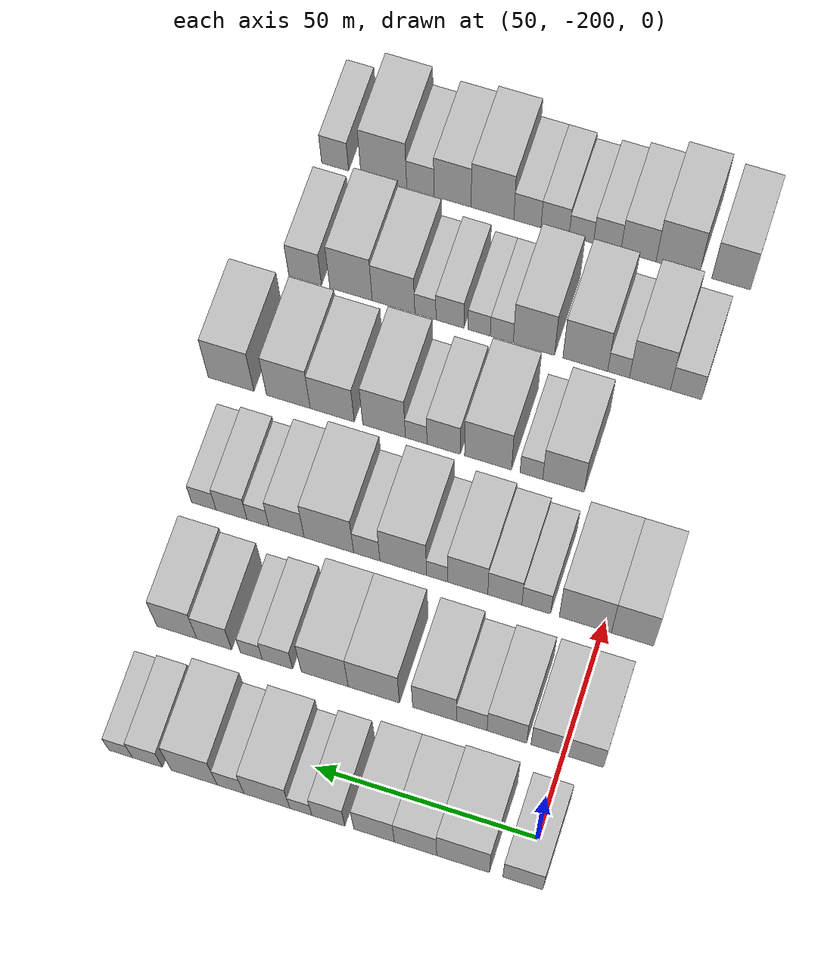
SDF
<sdf version="1.6">
 <world name="default">
  <model name="building_36">
   <static>1</static>
   <pose>50.0000 -199.7990 0 0.000000 0.000000 0.000000</pose>
   <link name="link">
    <pose>0 0 9.00 0 0 0</pose>
    <collision name="collision"><geometry><box><size>20.0000 8.8533 18.0000</size></box></geometry></collision>
    <visual name="visual">
     <cast_shadows>0</cast_shadows>
     <geometry><box><size>20.0000 8.8533 18.0000</size></box></geometry>
     <material>
      <script>
       <uri>model://HANNAS_wall/materials/scripts</uri>
       <uri>model://HANNAS_wall/materials/textures</uri>
       <name>vrc/HANNAS_wall</name>
      </script>
     </material>
    </visual>
   </link>
  </model>
  <model name="building_37">
   <static>1</static>
   <pose>50.0000 -186.5069 0 0.000000 0.000000 0.000000</pose>
   <link name="link">
    <pose>0 0 12.00 0 0 0</pose>
    <collision name="collision"><geometry><box><size>20.0000 11.7307 24.0000</size></box></geometry></collision>
    <visual name="visual">
     <cast_shadows>0</cast_shadows>
     <geometry><box><size>20.0000 11.7307 24.0000</size></box></geometry>
     <material>
      <script>
       <uri>model://HANNAS_wall/materials/scripts</uri>
       <uri>model://HANNAS_wall/materials/textures</uri>
       <name>vrc/HANNAS_wall</name>
      </script>
     </material>
    </visual>
   </link>
  </model>
  <model name="building_38">
   <static>1</static>
   <pose>50.0000 -175.9051 0 0.000000 0.000000 0.000000</pose>
   <link name="link">
    <pose>0 0 10.50 0 0 0</pose>
    <collision name="collision"><geometry><box><size>20.0000 9.4729 21.0000</size></box></geometry></collision>
    <visual name="visual">
     <cast_shadows>0</cast_shadows>
     <geometry><box><size>20.0000 9.4729 21.0000</size></box></geometry>
     <material>
      <script>
       <uri>model://HANNAS_wall/materials/scripts</uri>
       <uri>model://HANNAS_wall/materials/textures</uri>
       <name>vrc/HANNAS_wall</name>
      </script>
     </material>
    </visual>
   </link>
  </model>
  <model name="building_39">
   <static>1</static>
   <pose>50.0000 -166.6279 0 0.000000 0.000000 0.000000</pose>
   <link name="link">
    <pose>0 0 10.50 0 0 0</pose>
    <collision name="collision"><geometry><box><size>20.0000 9.0814 21.0000</size></box></geometry></collision>
    <visual name="visual">
     <cast_shadows>0</cast_shadows>
     <geometry><box><size>20.0000 9.0814 21.0000</size></box></geometry>
     <material>
      <script>
       <uri>model://HANNAS_wall/materials/scripts</uri>
       <uri>model://HANNAS_wall/materials/textures</uri>
       <name>vrc/HANNAS_wall</name>
      </script>
     </material>
    </visual>
   </link>
  </model>
  <model name="building_40">
   <static>1</static>
   <pose>50.0000 -156.3655 0 0.000000 0.000000 0.000000</pose>
   <link name="link">
    <pose>0 0 9.00 0 0 0</pose>
    <collision name="collision"><geometry><box><size>20.0000 7.4435 18.0000</size></box></geometry></collision>
    <visual name="visual">
     <cast_shadows>0</cast_shadows>
     <geometry><box><size>20.0000 7.4435 18.0000</size></box></geometry>
     <material>
      <script>
       <uri>model://HANNAS_wall/materials/scripts</uri>
       <uri>model://HANNAS_wall/materials/textures</uri>
       <name>vrc/HANNAS_wall</name>
      </script>
     </material>
    </visual>
   </link>
  </model>
  <model name="building_41">
   <static>1</static>
   <pose>50.0000 -150.1581 0 0.000000 0.000000 0.000000</pose>
   <link name="link">
    <pose>0 0 6.00 0 0 0</pose>
    <collision name="collision"><geometry><box><size>20.0000 4.9712 12.0000</size></box></geometry></collision>
    <visual name="visual">
     <cast_shadows>0</cast_shadows>
     <geometry><box><size>20.0000 4.9712 12.0000</size></box></geometry>
     <material>
      <script>
       <uri>model://HANNAS_wall/materials/scripts</uri>
       <uri>model://HANNAS_wall/materials/textures</uri>
       <name>vrc/HANNAS_wall</name>
      </script>
     </material>
    </visual>
   </link>
  </model>
  <model name="building_42">
   <static>1</static>
   <pose>50.0000 -142.4703 0 0.000000 0.000000 0.000000</pose>
   <link name="link">
    <pose>0 0 10.50 0 0 0</pose>
    <collision name="collision"><geometry><box><size>20.0000 10.4044 21.0000</size></box></geometry></collision>
    <visual name="visual">
     <cast_shadows>0</cast_shadows>
     <geometry><box><size>20.0000 10.4044 21.0000</size></box></geometry>
     <material>
      <script>
       <uri>model://HANNAS_wall/materials/scripts</uri>
       <uri>model://HANNAS_wall/materials/textures</uri>
       <name>vrc/HANNAS_wall</name>
      </script>
     </material>
    </visual>
   </link>
  </model>
  <model name="building_43">
   <static>1</static>
   <pose>50.0000 -134.2171 0 0.000000 0.000000 0.000000</pose>
   <link name="link">
    <pose>0 0 7.50 0 0 0</pose>
    <collision name="collision"><geometry><box><size>20.0000 6.1021 15.0000</size></box></geometry></collision>
    <visual name="visual">
     <cast_shadows>0</cast_shadows>
     <geometry><box><size>20.0000 6.1021 15.0000</size></box></geometry>
     <material>
      <script>
       <uri>model://HANNAS_wall/materials/scripts</uri>
       <uri>model://HANNAS_wall/materials/textures</uri>
       <name>vrc/HANNAS_wall</name>
      </script>
     </material>
    </visual>
   </link>
  </model>
  <model name="building_44">
   <static>1</static>
   <pose>50.0000 -125.9664 0 0.000000 0.000000 0.000000</pose>
   <link name="link">
    <pose>0 0 12.00 0 0 0</pose>
    <collision name="collision"><geometry><box><size>20.0000 10.3994 24.0000</size></box></geometry></collision>
    <visual name="visual">
     <cast_shadows>0</cast_shadows>
     <geometry><box><size>20.0000 10.3994 24.0000</size></box></geometry>
     <material>
      <script>
       <uri>model://HANNAS_wall/materials/scripts</uri>
       <uri>model://HANNAS_wall/materials/textures</uri>
       <name>vrc/HANNAS_wall</name>
      </script>
     </material>
    </visual>
   </link>
  </model>
  <model name="building_45">
   <static>1</static>
   <pose>50.0000 -115.3196 0 0.000000 0.000000 0.000000</pose>
   <link name="link">
    <pose>0 0 7.50 0 0 0</pose>
    <collision name="collision"><geometry><box><size>20.0000 6.8942 15.0000</size></box></geometry></collision>
    <visual name="visual">
     <cast_shadows>0</cast_shadows>
     <geometry><box><size>20.0000 6.8942 15.0000</size></box></geometry>
     <material>
      <script>
       <uri>model://HANNAS_wall/materials/scripts</uri>
       <uri>model://HANNAS_wall/materials/textures</uri>
       <name>vrc/HANNAS_wall</name>
      </script>
     </material>
    </visual>
   </link>
  </model>
  <model name="building_46">
   <static>1</static>
   <pose>50.0000 -109.1899 0 0.000000 0.000000 0.000000</pose>
   <link name="link">
    <pose>0 0 6.00 0 0 0</pose>
    <collision name="collision"><geometry><box><size>20.0000 5.3652 12.0000</size></box></geometry></collision>
    <visual name="visual">
     <cast_shadows>0</cast_shadows>
     <geometry><box><size>20.0000 5.3652 12.0000</size></box></geometry>
     <material>
      <script>
       <uri>model://HANNAS_wall/materials/scripts</uri>
       <uri>model://HANNAS_wall/materials/textures</uri>
       <name>vrc/HANNAS_wall</name>
      </script>
     </material>
    </visual>
   </link>
  </model>
  <model name="building_155">
   <static>1</static>
   <pose>79.0000 -204.7201 0 0.000000 0.000000 0.000000</pose>
   <link name="link">
    <pose>0 0 9.00 0 0 0</pose>
    <collision name="collision"><geometry><box><size>20.0000 8.3533 18.0000</size></box></geometry></collision>
    <visual name="visual">
     <cast_shadows>0</cast_shadows>
     <geometry><box><size>20.0000 8.3533 18.0000</size></box></geometry>
     <material>
      <script>
       <uri>model://HANNAS_wall/materials/scripts</uri>
       <uri>model://HANNAS_wall/materials/textures</uri>
       <name>vrc/HANNAS_wall</name>
      </script>
     </material>
    </visual>
   </link>
  </model>
  <model name="building_156">
   <static>1</static>
   <pose>79.0000 -196.5585 0 0.000000 0.000000 0.000000</pose>
   <link name="link">
    <pose>0 0 9.00 0 0 0</pose>
    <collision name="collision"><geometry><box><size>20.0000 7.9698 18.0000</size></box></geometry></collision>
    <visual name="visual">
     <cast_shadows>0</cast_shadows>
     <geometry><box><size>20.0000 7.9698 18.0000</size></box></geometry>
     <material>
      <script>
       <uri>model://HANNAS_wall/materials/scripts</uri>
       <uri>model://HANNAS_wall/materials/textures</uri>
       <name>vrc/HANNAS_wall</name>
      </script>
     </material>
    </visual>
   </link>
  </model>
  <model name="building_157">
   <static>1</static>
   <pose>79.0000 -187.1159 0 0.000000 0.000000 0.000000</pose>
   <link name="link">
    <pose>0 0 9.00 0 0 0</pose>
    <collision name="collision"><geometry><box><size>20.0000 8.9155 18.0000</size></box></geometry></collision>
    <visual name="visual">
     <cast_shadows>0</cast_shadows>
     <geometry><box><size>20.0000 8.9155 18.0000</size></box></geometry>
     <material>
      <script>
       <uri>model://HANNAS_wall/materials/scripts</uri>
       <uri>model://HANNAS_wall/materials/textures</uri>
       <name>vrc/HANNAS_wall</name>
      </script>
     </material>
    </visual>
   </link>
  </model>
  <model name="building_158">
   <static>1</static>
   <pose>79.0000 -179.1753 0 0.000000 0.000000 0.000000</pose>
   <link name="link">
    <pose>0 0 7.50 0 0 0</pose>
    <collision name="collision"><geometry><box><size>20.0000 6.9658 15.0000</size></box></geometry></collision>
    <visual name="visual">
     <cast_shadows>0</cast_shadows>
     <geometry><box><size>20.0000 6.9658 15.0000</size></box></geometry>
     <material>
      <script>
       <uri>model://HANNAS_wall/materials/scripts</uri>
       <uri>model://HANNAS_wall/materials/textures</uri>
       <name>vrc/HANNAS_wall</name>
      </script>
     </material>
    </visual>
   </link>
  </model>
  <model name="building_159">
   <static>1</static>
   <pose>79.0000 -170.7341 0 0.000000 0.000000 0.000000</pose>
   <link name="link">
    <pose>0 0 10.50 0 0 0</pose>
    <collision name="collision"><geometry><box><size>20.0000 9.9164 21.0000</size></box></geometry></collision>
    <visual name="visual">
     <cast_shadows>0</cast_shadows>
     <geometry><box><size>20.0000 9.9164 21.0000</size></box></geometry>
     <material>
      <script>
       <uri>model://HANNAS_wall/materials/scripts</uri>
       <uri>model://HANNAS_wall/materials/textures</uri>
       <name>vrc/HANNAS_wall</name>
      </script>
     </material>
    </visual>
   </link>
  </model>
  <model name="building_160">
   <static>1</static>
   <pose>79.0000 -156.9206 0 0.000000 0.000000 0.000000</pose>
   <link name="link">
    <pose>0 0 12.00 0 0 0</pose>
    <collision name="collision"><geometry><box><size>20.0000 11.7107 24.0000</size></box></geometry></collision>
    <visual name="visual">
     <cast_shadows>0</cast_shadows>
     <geometry><box><size>20.0000 11.7107 24.0000</size></box></geometry>
     <material>
      <script>
       <uri>model://HANNAS_wall/materials/scripts</uri>
       <uri>model://HANNAS_wall/materials/textures</uri>
       <name>vrc/HANNAS_wall</name>
      </script>
     </material>
    </visual>
   </link>
  </model>
  <model name="building_161">
   <static>1</static>
   <pose>79.0000 -145.6888 0 0.000000 0.000000 0.000000</pose>
   <link name="link">
    <pose>0 0 12.00 0 0 0</pose>
    <collision name="collision"><geometry><box><size>20.0000 10.7527 24.0000</size></box></geometry></collision>
    <visual name="visual">
     <cast_shadows>0</cast_shadows>
     <geometry><box><size>20.0000 10.7527 24.0000</size></box></geometry>
     <material>
      <script>
       <uri>model://HANNAS_wall/materials/scripts</uri>
       <uri>model://HANNAS_wall/materials/textures</uri>
       <name>vrc/HANNAS_wall</name>
      </script>
     </material>
    </visual>
   </link>
  </model>
  <model name="building_162">
   <static>1</static>
   <pose>79.0000 -134.8302 0 0.000000 0.000000 0.000000</pose>
   <link name="link">
    <pose>0 0 7.50 0 0 0</pose>
    <collision name="collision"><geometry><box><size>20.0000 6.9646 15.0000</size></box></geometry></collision>
    <visual name="visual">
     <cast_shadows>0</cast_shadows>
     <geometry><box><size>20.0000 6.9646 15.0000</size></box></geometry>
     <material>
      <script>
       <uri>model://HANNAS_wall/materials/scripts</uri>
       <uri>model://HANNAS_wall/materials/textures</uri>
       <name>vrc/HANNAS_wall</name>
      </script>
     </material>
    </visual>
   </link>
  </model>
  <model name="building_163">
   <static>1</static>
   <pose>79.0000 -128.8051 0 0.000000 0.000000 0.000000</pose>
   <link name="link">
    <pose>0 0 6.00 0 0 0</pose>
    <collision name="collision"><geometry><box><size>20.0000 5.0855 12.0000</size></box></geometry></collision>
    <visual name="visual">
     <cast_shadows>0</cast_shadows>
     <geometry><box><size>20.0000 5.0855 12.0000</size></box></geometry>
     <material>
      <script>
       <uri>model://HANNAS_wall/materials/scripts</uri>
       <uri>model://HANNAS_wall/materials/textures</uri>
       <name>vrc/HANNAS_wall</name>
      </script>
     </material>
    </visual>
   </link>
  </model>
  <model name="building_164">
   <static>1</static>
   <pose>79.0000 -120.2264 0 0.000000 0.000000 0.000000</pose>
   <link name="link">
    <pose>0 0 9.00 0 0 0</pose>
    <collision name="collision"><geometry><box><size>20.0000 8.0719 18.0000</size></box></geometry></collision>
    <visual name="visual">
     <cast_shadows>0</cast_shadows>
     <geometry><box><size>20.0000 8.0719 18.0000</size></box></geometry>
     <material>
      <script>
       <uri>model://HANNAS_wall/materials/scripts</uri>
       <uri>model://HANNAS_wall/materials/textures</uri>
       <name>vrc/HANNAS_wall</name>
      </script>
     </material>
    </visual>
   </link>
  </model>
  <model name="building_165">
   <static>1</static>
   <pose>79.0000 -111.5835 0 0.000000 0.000000 0.000000</pose>
   <link name="link">
    <pose>0 0 10.50 0 0 0</pose>
    <collision name="collision"><geometry><box><size>20.0000 9.2139 21.0000</size></box></geometry></collision>
    <visual name="visual">
     <cast_shadows>0</cast_shadows>
     <geometry><box><size>20.0000 9.2139 21.0000</size></box></geometry>
     <material>
      <script>
       <uri>model://HANNAS_wall/materials/scripts</uri>
       <uri>model://HANNAS_wall/materials/textures</uri>
       <name>vrc/HANNAS_wall</name>
      </script>
     </material>
    </visual>
   </link>
  </model>
  <model name="building_267">
   <static>1</static>
   <pose>108.0000 -206.7649 0 0.000000 0.000000 0.000000</pose>
   <link name="link">
    <pose>0 0 12.00 0 0 0</pose>
    <collision name="collision"><geometry><box><size>20.0000 9.6493 24.0000</size></box></geometry></collision>
    <visual name="visual">
     <cast_shadows>0</cast_shadows>
     <geometry><box><size>20.0000 9.6493 24.0000</size></box></geometry>
     <material>
      <script>
       <uri>model://HANNAS_wall/materials/scripts</uri>
       <uri>model://HANNAS_wall/materials/textures</uri>
       <name>vrc/HANNAS_wall</name>
      </script>
     </material>
    </visual>
   </link>
  </model>
  <model name="building_268">
   <static>1</static>
   <pose>108.0000 -195.9815 0 0.000000 0.000000 0.000000</pose>
   <link name="link">
    <pose>0 0 12.00 0 0 0</pose>
    <collision name="collision"><geometry><box><size>20.0000 11.9175 24.0000</size></box></geometry></collision>
    <visual name="visual">
     <cast_shadows>0</cast_shadows>
     <geometry><box><size>20.0000 11.9175 24.0000</size></box></geometry>
     <material>
      <script>
       <uri>model://HANNAS_wall/materials/scripts</uri>
       <uri>model://HANNAS_wall/materials/textures</uri>
       <name>vrc/HANNAS_wall</name>
      </script>
     </material>
    </visual>
   </link>
  </model>
  <model name="building_269">
   <static>1</static>
   <pose>108.0000 -184.7363 0 0.000000 0.000000 0.000000</pose>
   <link name="link">
    <pose>0 0 7.50 0 0 0</pose>
    <collision name="collision"><geometry><box><size>20.0000 6.5730 15.0000</size></box></geometry></collision>
    <visual name="visual">
     <cast_shadows>0</cast_shadows>
     <geometry><box><size>20.0000 6.5730 15.0000</size></box></geometry>
     <material>
      <script>
       <uri>model://HANNAS_wall/materials/scripts</uri>
       <uri>model://HANNAS_wall/materials/textures</uri>
       <name>vrc/HANNAS_wall</name>
      </script>
     </material>
    </visual>
   </link>
  </model>
  <model name="building_270">
   <static>1</static>
   <pose>108.0000 -177.5271 0 0.000000 0.000000 0.000000</pose>
   <link name="link">
    <pose>0 0 9.00 0 0 0</pose>
    <collision name="collision"><geometry><box><size>20.0000 7.8453 18.0000</size></box></geometry></collision>
    <visual name="visual">
     <cast_shadows>0</cast_shadows>
     <geometry><box><size>20.0000 7.8453 18.0000</size></box></geometry>
     <material>
      <script>
       <uri>model://HANNAS_wall/materials/scripts</uri>
       <uri>model://HANNAS_wall/materials/textures</uri>
       <name>vrc/HANNAS_wall</name>
      </script>
     </material>
    </visual>
   </link>
  </model>
  <model name="building_271">
   <static>1</static>
   <pose>108.0000 -168.9811 0 0.000000 0.000000 0.000000</pose>
   <link name="link">
    <pose>0 0 10.50 0 0 0</pose>
    <collision name="collision"><geometry><box><size>20.0000 9.2467 21.0000</size></box></geometry></collision>
    <visual name="visual">
     <cast_shadows>0</cast_shadows>
     <geometry><box><size>20.0000 9.2467 21.0000</size></box></geometry>
     <material>
      <script>
       <uri>model://HANNAS_wall/materials/scripts</uri>
       <uri>model://HANNAS_wall/materials/textures</uri>
       <name>vrc/HANNAS_wall</name>
      </script>
     </material>
    </visual>
   </link>
  </model>
  <model name="building_272">
   <static>1</static>
   <pose>108.0000 -161.9334 0 0.000000 0.000000 0.000000</pose>
   <link name="link">
    <pose>0 0 6.00 0 0 0</pose>
    <collision name="collision"><geometry><box><size>20.0000 4.8487 12.0000</size></box></geometry></collision>
    <visual name="visual">
     <cast_shadows>0</cast_shadows>
     <geometry><box><size>20.0000 4.8487 12.0000</size></box></geometry>
     <material>
      <script>
       <uri>model://HANNAS_wall/materials/scripts</uri>
       <uri>model://HANNAS_wall/materials/textures</uri>
       <name>vrc/HANNAS_wall</name>
      </script>
     </material>
    </visual>
   </link>
  </model>
  <model name="building_273">
   <static>1</static>
   <pose>108.0000 -154.0967 0 0.000000 0.000000 0.000000</pose>
   <link name="link">
    <pose>0 0 12.00 0 0 0</pose>
    <collision name="collision"><geometry><box><size>20.0000 10.8247 24.0000</size></box></geometry></collision>
    <visual name="visual">
     <cast_shadows>0</cast_shadows>
     <geometry><box><size>20.0000 10.8247 24.0000</size></box></geometry>
     <material>
      <script>
       <uri>model://HANNAS_wall/materials/scripts</uri>
       <uri>model://HANNAS_wall/materials/textures</uri>
       <name>vrc/HANNAS_wall</name>
      </script>
     </material>
    </visual>
   </link>
  </model>
  <model name="building_274">
   <static>1</static>
   <pose>108.0000 -145.6214 0 0.000000 0.000000 0.000000</pose>
   <link name="link">
    <pose>0 0 7.50 0 0 0</pose>
    <collision name="collision"><geometry><box><size>20.0000 6.1259 15.0000</size></box></geometry></collision>
    <visual name="visual">
     <cast_shadows>0</cast_shadows>
     <geometry><box><size>20.0000 6.1259 15.0000</size></box></geometry>
     <material>
      <script>
       <uri>model://HANNAS_wall/materials/scripts</uri>
       <uri>model://HANNAS_wall/materials/textures</uri>
       <name>vrc/HANNAS_wall</name>
      </script>
     </material>
    </visual>
   </link>
  </model>
  <model name="building_275">
   <static>1</static>
   <pose>108.0000 -136.7856 0 0.000000 0.000000 0.000000</pose>
   <link name="link">
    <pose>0 0 12.00 0 0 0</pose>
    <collision name="collision"><geometry><box><size>20.0000 11.5458 24.0000</size></box></geometry></collision>
    <visual name="visual">
     <cast_shadows>0</cast_shadows>
     <geometry><box><size>20.0000 11.5458 24.0000</size></box></geometry>
     <material>
      <script>
       <uri>model://HANNAS_wall/materials/scripts</uri>
       <uri>model://HANNAS_wall/materials/textures</uri>
       <name>vrc/HANNAS_wall</name>
      </script>
     </material>
    </visual>
   </link>
  </model>
  <model name="building_276">
   <static>1</static>
   <pose>108.0000 -126.8789 0 0.000000 0.000000 0.000000</pose>
   <link name="link">
    <pose>0 0 9.00 0 0 0</pose>
    <collision name="collision"><geometry><box><size>20.0000 8.2676 18.0000</size></box></geometry></collision>
    <visual name="visual">
     <cast_shadows>0</cast_shadows>
     <geometry><box><size>20.0000 8.2676 18.0000</size></box></geometry>
     <material>
      <script>
       <uri>model://HANNAS_wall/materials/scripts</uri>
       <uri>model://HANNAS_wall/materials/textures</uri>
       <name>vrc/HANNAS_wall</name>
      </script>
     </material>
    </visual>
   </link>
  </model>
  <model name="building_277">
   <static>1</static>
   <pose>108.0000 -120.1868 0 0.000000 0.000000 0.000000</pose>
   <link name="link">
    <pose>0 0 6.00 0 0 0</pose>
    <collision name="collision"><geometry><box><size>20.0000 5.1165 12.0000</size></box></geometry></collision>
    <visual name="visual">
     <cast_shadows>0</cast_shadows>
     <geometry><box><size>20.0000 5.1165 12.0000</size></box></geometry>
     <material>
      <script>
       <uri>model://HANNAS_wall/materials/scripts</uri>
       <uri>model://HANNAS_wall/materials/textures</uri>
       <name>vrc/HANNAS_wall</name>
      </script>
     </material>
    </visual>
   </link>
  </model>
  <model name="building_278">
   <static>1</static>
   <pose>108.0000 -113.9899 0 0.000000 0.000000 0.000000</pose>
   <link name="link">
    <pose>0 0 7.50 0 0 0</pose>
    <collision name="collision"><geometry><box><size>20.0000 7.2773 15.0000</size></box></geometry></collision>
    <visual name="visual">
     <cast_shadows>0</cast_shadows>
     <geometry><box><size>20.0000 7.2773 15.0000</size></box></geometry>
     <material>
      <script>
       <uri>model://HANNAS_wall/materials/scripts</uri>
       <uri>model://HANNAS_wall/materials/textures</uri>
       <name>vrc/HANNAS_wall</name>
      </script>
     </material>
    </visual>
   </link>
  </model>
  <model name="building_279">
   <static>1</static>
   <pose>108.0000 -107.4650 0 0.000000 0.000000 0.000000</pose>
   <link name="link">
    <pose>0 0 6.00 0 0 0</pose>
    <collision name="collision"><geometry><box><size>20.0000 5.7724 12.0000</size></box></geometry></collision>
    <visual name="visual">
     <cast_shadows>0</cast_shadows>
     <geometry><box><size>20.0000 5.7724 12.0000</size></box></geometry>
     <material>
      <script>
       <uri>model://HANNAS_wall/materials/scripts</uri>
       <uri>model://HANNAS_wall/materials/textures</uri>
       <name>vrc/HANNAS_wall</name>
      </script>
     </material>
    </visual>
   </link>
  </model>
  <model name="building_376">
   <static>1</static>
   <pose>137.0000 -182.0801 0 0.000000 0.000000 0.000000</pose>
   <link name="link">
    <pose>0 0 10.50 0 0 0</pose>
    <collision name="collision"><geometry><box><size>20.0000 9.6569 21.0000</size></box></geometry></collision>
    <visual name="visual">
     <cast_shadows>0</cast_shadows>
     <geometry><box><size>20.0000 9.6569 21.0000</size></box></geometry>
     <material>
      <script>
       <uri>model://HANNAS_wall/materials/scripts</uri>
       <uri>model://HANNAS_wall/materials/textures</uri>
       <name>vrc/HANNAS_wall</name>
      </script>
     </material>
    </visual>
   </link>
  </model>
  <model name="building_377">
   <static>1</static>
   <pose>137.0000 -174.6154 0 0.000000 0.000000 0.000000</pose>
   <link name="link">
    <pose>0 0 6.00 0 0 0</pose>
    <collision name="collision"><geometry><box><size>20.0000 5.2726 12.0000</size></box></geometry></collision>
    <visual name="visual">
     <cast_shadows>0</cast_shadows>
     <geometry><box><size>20.0000 5.2726 12.0000</size></box></geometry>
     <material>
      <script>
       <uri>model://HANNAS_wall/materials/scripts</uri>
       <uri>model://HANNAS_wall/materials/textures</uri>
       <name>vrc/HANNAS_wall</name>
      </script>
     </material>
    </visual>
   </link>
  </model>
  <model name="building_378">
   <static>1</static>
   <pose>137.0000 -164.4776 0 0.000000 0.000000 0.000000</pose>
   <link name="link">
    <pose>0 0 12.00 0 0 0</pose>
    <collision name="collision"><geometry><box><size>20.0000 11.0029 24.0000</size></box></geometry></collision>
    <visual name="visual">
     <cast_shadows>0</cast_shadows>
     <geometry><box><size>20.0000 11.0029 24.0000</size></box></geometry>
     <material>
      <script>
       <uri>model://HANNAS_wall/materials/scripts</uri>
       <uri>model://HANNAS_wall/materials/textures</uri>
       <name>vrc/HANNAS_wall</name>
      </script>
     </material>
    </visual>
   </link>
  </model>
  <model name="building_379">
   <static>1</static>
   <pose>137.0000 -154.0692 0 0.000000 0.000000 0.000000</pose>
   <link name="link">
    <pose>0 0 9.00 0 0 0</pose>
    <collision name="collision"><geometry><box><size>20.0000 7.8140 18.0000</size></box></geometry></collision>
    <visual name="visual">
     <cast_shadows>0</cast_shadows>
     <geometry><box><size>20.0000 7.8140 18.0000</size></box></geometry>
     <material>
      <script>
       <uri>model://HANNAS_wall/materials/scripts</uri>
       <uri>model://HANNAS_wall/materials/textures</uri>
       <name>vrc/HANNAS_wall</name>
      </script>
     </material>
    </visual>
   </link>
  </model>
  <model name="building_380">
   <static>1</static>
   <pose>137.0000 -147.6151 0 0.000000 0.000000 0.000000</pose>
   <link name="link">
    <pose>0 0 6.00 0 0 0</pose>
    <collision name="collision"><geometry><box><size>20.0000 5.0940 12.0000</size></box></geometry></collision>
    <visual name="visual">
     <cast_shadows>0</cast_shadows>
     <geometry><box><size>20.0000 5.0940 12.0000</size></box></geometry>
     <material>
      <script>
       <uri>model://HANNAS_wall/materials/scripts</uri>
       <uri>model://HANNAS_wall/materials/textures</uri>
       <name>vrc/HANNAS_wall</name>
      </script>
     </material>
    </visual>
   </link>
  </model>
  <model name="building_381">
   <static>1</static>
   <pose>137.0000 -140.0289 0 0.000000 0.000000 0.000000</pose>
   <link name="link">
    <pose>0 0 12.00 0 0 0</pose>
    <collision name="collision"><geometry><box><size>20.0000 10.0785 24.0000</size></box></geometry></collision>
    <visual name="visual">
     <cast_shadows>0</cast_shadows>
     <geometry><box><size>20.0000 10.0785 24.0000</size></box></geometry>
     <material>
      <script>
       <uri>model://HANNAS_wall/materials/scripts</uri>
       <uri>model://HANNAS_wall/materials/textures</uri>
       <name>vrc/HANNAS_wall</name>
      </script>
     </material>
    </visual>
   </link>
  </model>
  <model name="building_382">
   <static>1</static>
   <pose>137.0000 -127.7649 0 0.000000 0.000000 0.000000</pose>
   <link name="link">
    <pose>0 0 10.50 0 0 0</pose>
    <collision name="collision"><geometry><box><size>20.0000 10.4493 21.0000</size></box></geometry></collision>
    <visual name="visual">
     <cast_shadows>0</cast_shadows>
     <geometry><box><size>20.0000 10.4493 21.0000</size></box></geometry>
     <material>
      <script>
       <uri>model://HANNAS_wall/materials/scripts</uri>
       <uri>model://HANNAS_wall/materials/textures</uri>
       <name>vrc/HANNAS_wall</name>
      </script>
     </material>
    </visual>
   </link>
  </model>
  <model name="building_383">
   <static>1</static>
   <pose>137.0000 -117.3345 0 0.000000 0.000000 0.000000</pose>
   <link name="link">
    <pose>0 0 12.00 0 0 0</pose>
    <collision name="collision"><geometry><box><size>20.0000 10.4115 24.0000</size></box></geometry></collision>
    <visual name="visual">
     <cast_shadows>0</cast_shadows>
     <geometry><box><size>20.0000 10.4115 24.0000</size></box></geometry>
     <material>
      <script>
       <uri>model://HANNAS_wall/materials/scripts</uri>
       <uri>model://HANNAS_wall/materials/textures</uri>
       <name>vrc/HANNAS_wall</name>
      </script>
     </material>
    </visual>
   </link>
  </model>
  <model name="building_384">
   <static>1</static>
   <pose>137.0000 -103.6721 0 0.000000 0.000000 0.000000</pose>
   <link name="link">
    <pose>0 0 12.00 0 0 0</pose>
    <collision name="collision"><geometry><box><size>20.0000 10.9133 24.0000</size></box></geometry></collision>
    <visual name="visual">
     <cast_shadows>0</cast_shadows>
     <geometry><box><size>20.0000 10.9133 24.0000</size></box></geometry>
     <material>
      <script>
       <uri>model://HANNAS_wall/materials/scripts</uri>
       <uri>model://HANNAS_wall/materials/textures</uri>
       <name>vrc/HANNAS_wall</name>
      </script>
     </material>
    </visual>
   </link>
  </model>
  <model name="building_486">
   <static>1</static>
   <pose>166.0000 -202.0836 0 0.000000 0.000000 0.000000</pose>
   <link name="link">
    <pose>0 0 7.50 0 0 0</pose>
    <collision name="collision"><geometry><box><size>20.0000 7.3216 15.0000</size></box></geometry></collision>
    <visual name="visual">
     <cast_shadows>0</cast_shadows>
     <geometry><box><size>20.0000 7.3216 15.0000</size></box></geometry>
     <material>
      <script>
       <uri>model://HANNAS_wall/materials/scripts</uri>
       <uri>model://HANNAS_wall/materials/textures</uri>
       <name>vrc/HANNAS_wall</name>
      </script>
     </material>
    </visual>
   </link>
  </model>
  <model name="building_487">
   <static>1</static>
   <pose>166.0000 -193.6081 0 0.000000 0.000000 0.000000</pose>
   <link name="link">
    <pose>0 0 12.00 0 0 0</pose>
    <collision name="collision"><geometry><box><size>20.0000 9.6293 24.0000</size></box></geometry></collision>
    <visual name="visual">
     <cast_shadows>0</cast_shadows>
     <geometry><box><size>20.0000 9.6293 24.0000</size></box></geometry>
     <material>
      <script>
       <uri>model://HANNAS_wall/materials/scripts</uri>
       <uri>model://HANNAS_wall/materials/textures</uri>
       <name>vrc/HANNAS_wall</name>
      </script>
     </material>
    </visual>
   </link>
  </model>
  <model name="building_488">
   <static>1</static>
   <pose>166.0000 -186.2119 0 0.000000 0.000000 0.000000</pose>
   <link name="link">
    <pose>0 0 6.00 0 0 0</pose>
    <collision name="collision"><geometry><box><size>20.0000 5.1630 12.0000</size></box></geometry></collision>
    <visual name="visual">
     <cast_shadows>0</cast_shadows>
     <geometry><box><size>20.0000 5.1630 12.0000</size></box></geometry>
     <material>
      <script>
       <uri>model://HANNAS_wall/materials/scripts</uri>
       <uri>model://HANNAS_wall/materials/textures</uri>
       <name>vrc/HANNAS_wall</name>
      </script>
     </material>
    </visual>
   </link>
  </model>
  <model name="building_489">
   <static>1</static>
   <pose>166.0000 -178.3449 0 0.000000 0.000000 0.000000</pose>
   <link name="link">
    <pose>0 0 12.00 0 0 0</pose>
    <collision name="collision"><geometry><box><size>20.0000 10.5710 24.0000</size></box></geometry></collision>
    <visual name="visual">
     <cast_shadows>0</cast_shadows>
     <geometry><box><size>20.0000 10.5710 24.0000</size></box></geometry>
     <material>
      <script>
       <uri>model://HANNAS_wall/materials/scripts</uri>
       <uri>model://HANNAS_wall/materials/textures</uri>
       <name>vrc/HANNAS_wall</name>
      </script>
     </material>
    </visual>
   </link>
  </model>
  <model name="building_490">
   <static>1</static>
   <pose>166.0000 -166.1686 0 0.000000 0.000000 0.000000</pose>
   <link name="link">
    <pose>0 0 12.00 0 0 0</pose>
    <collision name="collision"><geometry><box><size>20.0000 9.7816 24.0000</size></box></geometry></collision>
    <visual name="visual">
     <cast_shadows>0</cast_shadows>
     <geometry><box><size>20.0000 9.7816 24.0000</size></box></geometry>
     <material>
      <script>
       <uri>model://HANNAS_wall/materials/scripts</uri>
       <uri>model://HANNAS_wall/materials/textures</uri>
       <name>vrc/HANNAS_wall</name>
      </script>
     </material>
    </visual>
   </link>
  </model>
  <model name="building_491">
   <static>1</static>
   <pose>166.0000 -158.5425 0 0.000000 0.000000 0.000000</pose>
   <link name="link">
    <pose>0 0 6.00 0 0 0</pose>
    <collision name="collision"><geometry><box><size>20.0000 5.4705 12.0000</size></box></geometry></collision>
    <visual name="visual">
     <cast_shadows>0</cast_shadows>
     <geometry><box><size>20.0000 5.4705 12.0000</size></box></geometry>
     <material>
      <script>
       <uri>model://HANNAS_wall/materials/scripts</uri>
       <uri>model://HANNAS_wall/materials/textures</uri>
       <name>vrc/HANNAS_wall</name>
      </script>
     </material>
    </visual>
   </link>
  </model>
  <model name="building_492">
   <static>1</static>
   <pose>166.0000 -153.1589 0 0.000000 0.000000 0.000000</pose>
   <link name="link">
    <pose>0 0 6.00 0 0 0</pose>
    <collision name="collision"><geometry><box><size>20.0000 5.2967 12.0000</size></box></geometry></collision>
    <visual name="visual">
     <cast_shadows>0</cast_shadows>
     <geometry><box><size>20.0000 5.2967 12.0000</size></box></geometry>
     <material>
      <script>
       <uri>model://HANNAS_wall/materials/scripts</uri>
       <uri>model://HANNAS_wall/materials/textures</uri>
       <name>vrc/HANNAS_wall</name>
      </script>
     </material>
    </visual>
   </link>
  </model>
  <model name="building_493">
   <static>1</static>
   <pose>166.0000 -146.1861 0 0.000000 0.000000 0.000000</pose>
   <link name="link">
    <pose>0 0 7.50 0 0 0</pose>
    <collision name="collision"><geometry><box><size>20.0000 6.6491 15.0000</size></box></geometry></collision>
    <visual name="visual">
     <cast_shadows>0</cast_shadows>
     <geometry><box><size>20.0000 6.6491 15.0000</size></box></geometry>
     <material>
      <script>
       <uri>model://HANNAS_wall/materials/scripts</uri>
       <uri>model://HANNAS_wall/materials/textures</uri>
       <name>vrc/HANNAS_wall</name>
      </script>
     </material>
    </visual>
   </link>
  </model>
  <model name="building_494">
   <static>1</static>
   <pose>166.0000 -140.3294 0 0.000000 0.000000 0.000000</pose>
   <link name="link">
    <pose>0 0 6.00 0 0 0</pose>
    <collision name="collision"><geometry><box><size>20.0000 5.0643 12.0000</size></box></geometry></collision>
    <visual name="visual">
     <cast_shadows>0</cast_shadows>
     <geometry><box><size>20.0000 5.0643 12.0000</size></box></geometry>
     <material>
      <script>
       <uri>model://HANNAS_wall/materials/scripts</uri>
       <uri>model://HANNAS_wall/materials/textures</uri>
       <name>vrc/HANNAS_wall</name>
      </script>
     </material>
    </visual>
   </link>
  </model>
  <model name="building_495">
   <static>1</static>
   <pose>166.0000 -132.6796 0 0.000000 0.000000 0.000000</pose>
   <link name="link">
    <pose>0 0 10.50 0 0 0</pose>
    <collision name="collision"><geometry><box><size>20.0000 10.2352 21.0000</size></box></geometry></collision>
    <visual name="visual">
     <cast_shadows>0</cast_shadows>
     <geometry><box><size>20.0000 10.2352 21.0000</size></box></geometry>
     <material>
      <script>
       <uri>model://HANNAS_wall/materials/scripts</uri>
       <uri>model://HANNAS_wall/materials/textures</uri>
       <name>vrc/HANNAS_wall</name>
      </script>
     </material>
    </visual>
   </link>
  </model>
  <model name="building_496">
   <static>1</static>
   <pose>166.0000 -122.4592 0 0.000000 0.000000 0.000000</pose>
   <link name="link">
    <pose>0 0 12.00 0 0 0</pose>
    <collision name="collision"><geometry><box><size>20.0000 10.2056 24.0000</size></box></geometry></collision>
    <visual name="visual">
     <cast_shadows>0</cast_shadows>
     <geometry><box><size>20.0000 10.2056 24.0000</size></box></geometry>
     <material>
      <script>
       <uri>model://HANNAS_wall/materials/scripts</uri>
       <uri>model://HANNAS_wall/materials/textures</uri>
       <name>vrc/HANNAS_wall</name>
      </script>
     </material>
    </visual>
   </link>
  </model>
  <model name="building_497">
   <static>1</static>
   <pose>166.0000 -111.4031 0 0.000000 0.000000 0.000000</pose>
   <link name="link">
    <pose>0 0 9.00 0 0 0</pose>
    <collision name="collision"><geometry><box><size>20.0000 7.9065 18.0000</size></box></geometry></collision>
    <visual name="visual">
     <cast_shadows>0</cast_shadows>
     <geometry><box><size>20.0000 7.9065 18.0000</size></box></geometry>
     <material>
      <script>
       <uri>model://HANNAS_wall/materials/scripts</uri>
       <uri>model://HANNAS_wall/materials/textures</uri>
       <name>vrc/HANNAS_wall</name>
      </script>
     </material>
    </visual>
   </link>
  </model>
  <model name="building_603">
   <static>1</static>
   <pose>195.0000 -204.4018 0 0.000000 0.000000 0.000000</pose>
   <link name="link">
    <pose>0 0 10.50 0 0 0</pose>
    <collision name="collision"><geometry><box><size>20.0000 9.1865 21.0000</size></box></geometry></collision>
    <visual name="visual">
     <cast_shadows>0</cast_shadows>
     <geometry><box><size>20.0000 9.1865 21.0000</size></box></geometry>
     <material>
      <script>
       <uri>model://HANNAS_wall/materials/scripts</uri>
       <uri>model://HANNAS_wall/materials/textures</uri>
       <name>vrc/HANNAS_wall</name>
      </script>
     </material>
    </visual>
   </link>
  </model>
  <model name="building_604">
   <static>1</static>
   <pose>195.0000 -191.6500 0 0.000000 0.000000 0.000000</pose>
   <link name="link">
    <pose>0 0 12.00 0 0 0</pose>
    <collision name="collision"><geometry><box><size>20.0000 10.3172 24.0000</size></box></geometry></collision>
    <visual name="visual">
     <cast_shadows>0</cast_shadows>
     <geometry><box><size>20.0000 10.3172 24.0000</size></box></geometry>
     <material>
      <script>
       <uri>model://HANNAS_wall/materials/scripts</uri>
       <uri>model://HANNAS_wall/materials/textures</uri>
       <name>vrc/HANNAS_wall</name>
      </script>
     </material>
    </visual>
   </link>
  </model>
  <model name="building_605">
   <static>1</static>
   <pose>195.0000 -182.2785 0 0.000000 0.000000 0.000000</pose>
   <link name="link">
    <pose>0 0 9.00 0 0 0</pose>
    <collision name="collision"><geometry><box><size>20.0000 8.4257 18.0000</size></box></geometry></collision>
    <visual name="visual">
     <cast_shadows>0</cast_shadows>
     <geometry><box><size>20.0000 8.4257 18.0000</size></box></geometry>
     <material>
      <script>
       <uri>model://HANNAS_wall/materials/scripts</uri>
       <uri>model://HANNAS_wall/materials/textures</uri>
       <name>vrc/HANNAS_wall</name>
      </script>
     </material>
    </visual>
   </link>
  </model>
  <model name="building_606">
   <static>1</static>
   <pose>195.0000 -174.7779 0 0.000000 0.000000 0.000000</pose>
   <link name="link">
    <pose>0 0 7.50 0 0 0</pose>
    <collision name="collision"><geometry><box><size>20.0000 6.5755 15.0000</size></box></geometry></collision>
    <visual name="visual">
     <cast_shadows>0</cast_shadows>
     <geometry><box><size>20.0000 6.5755 15.0000</size></box></geometry>
     <material>
      <script>
       <uri>model://HANNAS_wall/materials/scripts</uri>
       <uri>model://HANNAS_wall/materials/textures</uri>
       <name>vrc/HANNAS_wall</name>
      </script>
     </material>
    </visual>
   </link>
  </model>
  <model name="building_607">
   <static>1</static>
   <pose>195.0000 -168.5614 0 0.000000 0.000000 0.000000</pose>
   <link name="link">
    <pose>0 0 6.00 0 0 0</pose>
    <collision name="collision"><geometry><box><size>20.0000 5.8577 12.0000</size></box></geometry></collision>
    <visual name="visual">
     <cast_shadows>0</cast_shadows>
     <geometry><box><size>20.0000 5.8577 12.0000</size></box></geometry>
     <material>
      <script>
       <uri>model://HANNAS_wall/materials/scripts</uri>
       <uri>model://HANNAS_wall/materials/textures</uri>
       <name>vrc/HANNAS_wall</name>
      </script>
     </material>
    </visual>
   </link>
  </model>
  <model name="building_608">
   <static>1</static>
   <pose>195.0000 -162.2481 0 0.000000 0.000000 0.000000</pose>
   <link name="link">
    <pose>0 0 7.50 0 0 0</pose>
    <collision name="collision"><geometry><box><size>20.0000 6.7688 15.0000</size></box></geometry></collision>
    <visual name="visual">
     <cast_shadows>0</cast_shadows>
     <geometry><box><size>20.0000 6.7688 15.0000</size></box></geometry>
     <material>
      <script>
       <uri>model://HANNAS_wall/materials/scripts</uri>
       <uri>model://HANNAS_wall/materials/textures</uri>
       <name>vrc/HANNAS_wall</name>
      </script>
     </material>
    </visual>
   </link>
  </model>
  <model name="building_609">
   <static>1</static>
   <pose>195.0000 -155.5844 0 0.000000 0.000000 0.000000</pose>
   <link name="link">
    <pose>0 0 7.50 0 0 0</pose>
    <collision name="collision"><geometry><box><size>20.0000 6.5586 15.0000</size></box></geometry></collision>
    <visual name="visual">
     <cast_shadows>0</cast_shadows>
     <geometry><box><size>20.0000 6.5586 15.0000</size></box></geometry>
     <material>
      <script>
       <uri>model://HANNAS_wall/materials/scripts</uri>
       <uri>model://HANNAS_wall/materials/textures</uri>
       <name>vrc/HANNAS_wall</name>
      </script>
     </material>
    </visual>
   </link>
  </model>
  <model name="building_610">
   <static>1</static>
   <pose>195.0000 -147.1334 0 0.000000 0.000000 0.000000</pose>
   <link name="link">
    <pose>0 0 12.00 0 0 0</pose>
    <collision name="collision"><geometry><box><size>20.0000 10.3433 24.0000</size></box></geometry></collision>
    <visual name="visual">
     <cast_shadows>0</cast_shadows>
     <geometry><box><size>20.0000 10.3433 24.0000</size></box></geometry>
     <material>
      <script>
       <uri>model://HANNAS_wall/materials/scripts</uri>
       <uri>model://HANNAS_wall/materials/textures</uri>
       <name>vrc/HANNAS_wall</name>
      </script>
     </material>
    </visual>
   </link>
  </model>
  <model name="building_611">
   <static>1</static>
   <pose>195.0000 -137.4752 0 0.000000 0.000000 0.000000</pose>
   <link name="link">
    <pose>0 0 10.50 0 0 0</pose>
    <collision name="collision"><geometry><box><size>20.0000 8.9730 21.0000</size></box></geometry></collision>
    <visual name="visual">
     <cast_shadows>0</cast_shadows>
     <geometry><box><size>20.0000 8.9730 21.0000</size></box></geometry>
     <material>
      <script>
       <uri>model://HANNAS_wall/materials/scripts</uri>
       <uri>model://HANNAS_wall/materials/textures</uri>
       <name>vrc/HANNAS_wall</name>
      </script>
     </material>
    </visual>
   </link>
  </model>
  <model name="building_612">
   <static>1</static>
   <pose>195.0000 -129.6597 0 0.000000 0.000000 0.000000</pose>
   <link name="link">
    <pose>0 0 7.50 0 0 0</pose>
    <collision name="collision"><geometry><box><size>20.0000 6.6581 15.0000</size></box></geometry></collision>
    <visual name="visual">
     <cast_shadows>0</cast_shadows>
     <geometry><box><size>20.0000 6.6581 15.0000</size></box></geometry>
     <material>
      <script>
       <uri>model://HANNAS_wall/materials/scripts</uri>
       <uri>model://HANNAS_wall/materials/textures</uri>
       <name>vrc/HANNAS_wall</name>
      </script>
     </material>
    </visual>
   </link>
  </model>
  <model name="building_613">
   <static>1</static>
   <pose>195.0000 -120.7359 0 0.000000 0.000000 0.000000</pose>
   <link name="link">
    <pose>0 0 12.00 0 0 0</pose>
    <collision name="collision"><geometry><box><size>20.0000 11.1895 24.0000</size></box></geometry></collision>
    <visual name="visual">
     <cast_shadows>0</cast_shadows>
     <geometry><box><size>20.0000 11.1895 24.0000</size></box></geometry>
     <material>
      <script>
       <uri>model://HANNAS_wall/materials/scripts</uri>
       <uri>model://HANNAS_wall/materials/textures</uri>
       <name>vrc/HANNAS_wall</name>
      </script>
     </material>
    </visual>
   </link>
  </model>
  <model name="building_614">
   <static>1</static>
   <pose>195.0000 -108.8380 0 0.000000 0.000000 0.000000</pose>
   <link name="link">
    <pose>0 0 7.50 0 0 0</pose>
    <collision name="collision"><geometry><box><size>20.0000 6.6063 15.0000</size></box></geometry></collision>
    <visual name="visual">
     <cast_shadows>0</cast_shadows>
     <geometry><box><size>20.0000 6.6063 15.0000</size></box></geometry>
     <material>
      <script>
       <uri>model://HANNAS_wall/materials/scripts</uri>
       <uri>model://HANNAS_wall/materials/textures</uri>
       <name>vrc/HANNAS_wall</name>
      </script>
     </material>
    </visual>
   </link>
  </model>
 </world>
</sdf>
